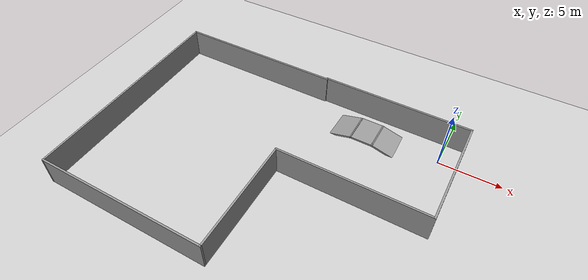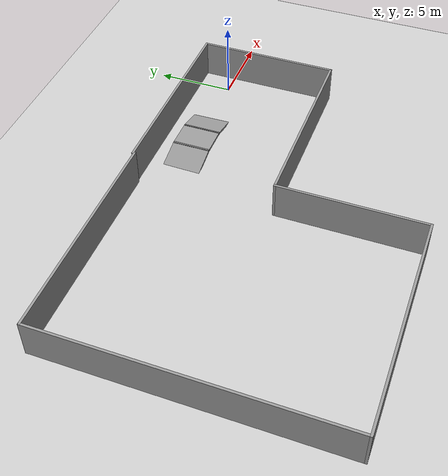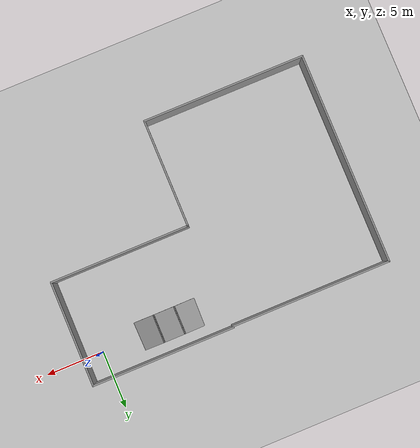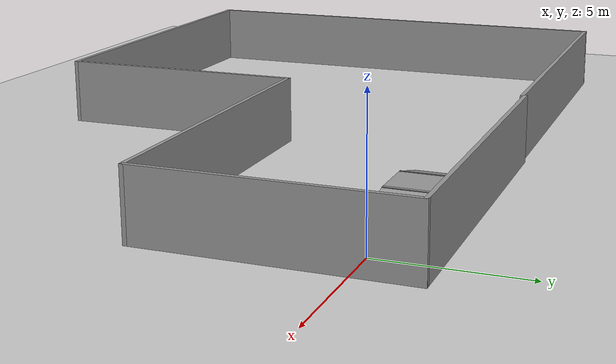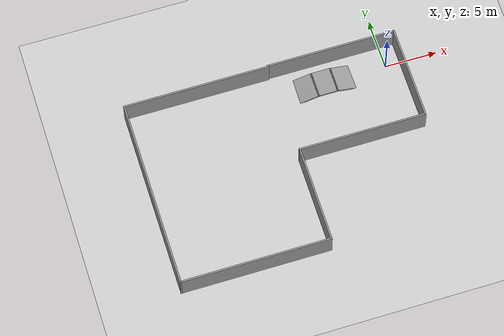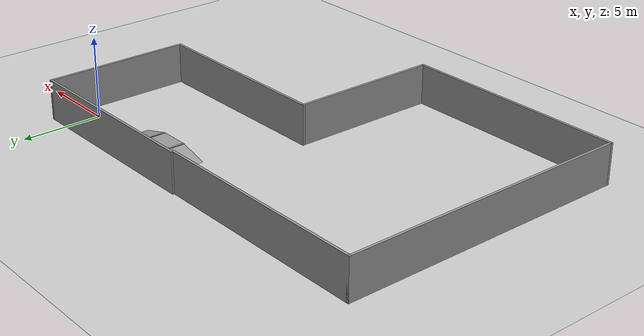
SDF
<sdf version="1.6">
 <world name="default">
  <light name="sun" type="directional">
   <pose>0 0 10 0 -0 0</pose>
   <diffuse>0.8 0.8 0.8 1</diffuse>
   <specular>0.2 0.2 0.2 1</specular>
   <attenuation>
    <range>1000</range>
    <constant>0.9</constant>
    <linear>0.01</linear>
    <quadratic>0.001</quadratic>
   </attenuation>
   <direction>-0.5 0.1 -0.9</direction>
  </light>
  <model name="ground_plane">
   <static>1</static>
   <link name="link">
    <collision name="collision">
     <geometry><plane><normal>0 0 1</normal><size>100 100</size></plane></geometry>
     <surface>
      <contact><collide_bitmask>65535</collide_bitmask></contact>
      <friction><ode><mu>100</mu><mu2>50</mu2></ode></friction>
     </surface>
    </collision>
    <visual name="visual">
     <cast_shadows>0</cast_shadows>
     <geometry><plane><normal>0 0 1</normal><size>100 100</size></plane></geometry>
     <material>
      <script><uri>file://media/materials/scripts/gazebo.material</uri><name>Gazebo/Grey</name></script>
     </material>
    </visual>
   </link>
  </model>
  <gravity>0 0 -9.8</gravity>
  <magnetic_field>6e-06 2.3e-05 -4.2e-05</magnetic_field>
  <atmosphere type="adiabatic"/>
  <physics name="default_physics" default="0" type="ode">
   <max_step_size>0.001</max_step_size>
   <real_time_factor>1</real_time_factor>
   <real_time_update_rate>1000</real_time_update_rate>
  </physics>
  <scene><ambient>0.4 0.4 0.4 1</ambient><background>0.7 0.7 0.7 1</background><shadows>1</shadows></scene>
  <audio><device>default</device></audio>
  <spherical_coordinates>
   <surface_model>EARTH_WGS84</surface_model>
   <latitude_deg>0</latitude_deg>
   <longitude_deg>0</longitude_deg>
   <elevation>0</elevation>
   <heading_deg>0</heading_deg>
  </spherical_coordinates>
  <model name="naoki_test">
   <pose>-11.6423 -7.05987 0 0 -0 0</pose>
   <link name="Wall_10">
    <collision name="Wall_10_Collision">
     <geometry><box><size>9.5 0.15 2.5</size></box></geometry>
     <pose>0 0 1.25 0 -0 0</pose>
    </collision>
    <visual name="Wall_10_Visual">
     <pose>0 0 1.25 0 -0 0</pose>
     <geometry><box><size>9.5 0.15 2.5</size></box></geometry>
     <material>
      <script><uri>file://media/materials/scripts/gazebo.material</uri><name>Gazebo/Grey</name></script>
      <ambient>1 1 1 1</ambient>
     </material>
     <meta><layer>0</layer></meta>
    </visual>
    <pose>1 -4.55 0 0 -0 -1.5708</pose>
   </link>
   <link name="Wall_11">
    <collision name="Wall_11_Collision">
     <geometry><box><size>14.25 0.15 2.5</size></box></geometry>
     <pose>0 0 1.25 0 -0 0</pose>
    </collision>
    <visual name="Wall_11_Visual">
     <pose>0 0 1.25 0 -0 0</pose>
     <geometry><box><size>14.25 0.15 2.5</size></box></geometry>
     <material>
      <script><uri>file://media/materials/scripts/gazebo.material</uri><name>Gazebo/Grey</name></script>
      <ambient>1 1 1 1</ambient>
     </material>
     <meta><layer>0</layer></meta>
    </visual>
    <pose>-6.05 -9.225 0 0 -0 3.14159</pose>
   </link>
   <link name="Wall_12">
    <collision name="Wall_12_Collision">
     <geometry><box><size>18.5 0.15 2.5</size></box></geometry>
     <pose>0 0 1.25 0 -0 0</pose>
    </collision>
    <visual name="Wall_12_Visual">
     <pose>0 0 1.25 0 -0 0</pose>
     <geometry><box><size>18.5 0.15 2.5</size></box></geometry>
     <material>
      <script><uri>file://media/materials/scripts/gazebo.material</uri><name>Gazebo/Grey</name></script>
      <ambient>1 1 1 1</ambient>
     </material>
     <meta><layer>0</layer></meta>
    </visual>
    <pose>-13.1 -0.05 0 0 -0 1.5708</pose>
   </link>
   <link name="Wall_13">
    <collision name="Wall_13_Collision">
     <geometry><box><size>14 0.15 2.5</size></box></geometry>
     <pose>0 0 1.25 0 -0 0</pose>
    </collision>
    <visual name="Wall_13_Visual">
     <pose>0 0 1.25 0 -0 0</pose>
     <geometry><box><size>14 0.15 2.5</size></box></geometry>
     <material>
      <script><uri>file://media/materials/scripts/gazebo.material</uri><name>Gazebo/Grey</name></script>
      <ambient>1 1 1 1</ambient>
     </material>
     <meta><layer>0</layer></meta>
    </visual>
    <pose>-6.175 9.125 0 0 -0 0</pose>
   </link>
   <link name="Wall_7">
    <collision name="Wall_7_Collision">
     <geometry><box><size>12.5 0.15 2.5</size></box></geometry>
     <pose>0 0 1.25 0 -0 0</pose>
    </collision>
    <visual name="Wall_7_Visual">
     <pose>0 0 1.25 0 -0 0</pose>
     <geometry><box><size>12.5 0.15 2.5</size></box></geometry>
     <material>
      <script><uri>file://media/materials/scripts/gazebo.material</uri><name>Gazebo/Grey</name></script>
      <ambient>1 1 1 1</ambient>
     </material>
     <meta><layer>0</layer></meta>
    </visual>
    <pose>6.925 9.225 0 0 -0 0</pose>
   </link>
   <link name="Wall_8">
    <collision name="Wall_8_Collision">
     <geometry><box><size>9.25 0.15 2.5</size></box></geometry>
     <pose>0 0 1.25 0 -0 0</pose>
    </collision>
    <visual name="Wall_8_Visual">
     <pose>0 0 1.25 0 -0 0</pose>
     <geometry><box><size>9.25 0.15 2.5</size></box></geometry>
     <material>
      <script><uri>file://media/materials/scripts/gazebo.material</uri><name>Gazebo/Grey</name></script>
      <ambient>1 1 1 1</ambient>
     </material>
     <meta><layer>0</layer></meta>
    </visual>
    <pose>13.1 4.675 0 0 -0 -1.5708</pose>
   </link>
   <link name="Wall_9">
    <collision name="Wall_9_Collision">
     <geometry><box><size>12.25 0.15 2.5</size></box></geometry>
     <pose>0 0 1.25 0 -0 0</pose>
    </collision>
    <visual name="Wall_9_Visual">
     <pose>0 0 1.25 0 -0 0</pose>
     <geometry><box><size>12.25 0.15 2.5</size></box></geometry>
     <material>
      <script><uri>file://media/materials/scripts/gazebo.material</uri><name>Gazebo/Grey</name></script>
      <ambient>1 1 1 1</ambient>
     </material>
     <meta><layer>0</layer></meta>
    </visual>
    <pose>7.05 0.125 0 0 -0 3.14159</pose>
   </link>
   <static>1</static>
  </model>
  <model name="slope_0">
   <pose>-6.03898 1.2371 0.125665 1.5654 -0 0</pose>
   <link name="Wall_11">
    <collision name="Wall_11_Collision">
     <geometry><box><size>2 0.15 2.5</size></box></geometry>
     <pose>0 0 1.25 0 -0 0</pose>
    </collision>
    <visual name="Wall_11_Visual">
     <pose>0 0 1.25 0 -0 0</pose>
     <geometry><box><size>2 0.15 2.5</size></box></geometry>
     <material>
      <script><uri>file://media/materials/scripts/gazebo.material</uri><name>Gazebo/Grey</name></script>
      <ambient>1 1 1 1</ambient>
     </material>
     <meta><layer>0</layer></meta>
    </visual>
    <pose>-1.81848 0 0 0 -0 0.261799</pose>
   </link>
   <link name="Wall_12">
    <collision name="Wall_12_Collision">
     <geometry><box><size>2 0.15 2.5</size></box></geometry>
     <pose>0 0 1.25 0 -0 0</pose>
    </collision>
    <visual name="Wall_12_Visual">
     <pose>0 0 1.25 0 -0 0</pose>
     <geometry><box><size>2 0.15 2.5</size></box></geometry>
     <material>
      <script><uri>file://media/materials/scripts/gazebo.material</uri><name>Gazebo/Grey</name></script>
      <ambient>1 1 1 1</ambient>
     </material>
     <meta><layer>0</layer></meta>
    </visual>
    <pose>-0 0.239408 0 0 -0 0</pose>
   </link>
   <link name="Wall_13">
    <collision name="Wall_13_Collision">
     <geometry><box><size>2 0.15 2.5</size></box></geometry>
     <pose>0 0 1.25 0 -0 0</pose>
    </collision>
    <visual name="Wall_13_Visual">
     <pose>0 0 1.25 0 -0 0</pose>
     <geometry><box><size>2 0.15 2.5</size></box></geometry>
     <material>
      <script><uri>file://media/materials/scripts/gazebo.material</uri><name>Gazebo/Grey</name></script>
      <ambient>1 1 1 1</ambient>
     </material>
     <meta><layer>0</layer></meta>
    </visual>
    <pose>1.81848 0 0 0 -0 -0.261799</pose>
   </link>
   <static>1</static>
  </model>
 </world>
</sdf>
